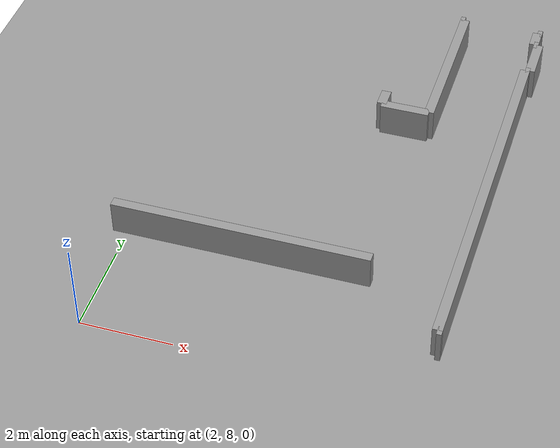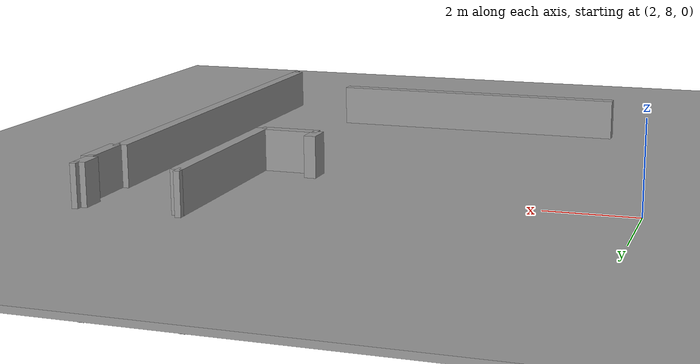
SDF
<sdf version="1.4">
 <model name="Levine">
  <link name="Floor_0">
   <collision name="Floor_0_Collision">
    <geometry><box><size>40 30 0.1</size></box></geometry>
    <pose>0 0 0.05 0 -0 0</pose>
   </collision>
   <visual name="Floor_0_Visual">
    <pose>0 0 0.05 0 -0 0</pose>
    <geometry><box><size>40 30 0.1</size></box></geometry>
    <material>
     <script><uri>file://media/materials/scripts/gazebo.material</uri><name>Gazebo/Grey</name></script>
    </material>
   </visual>
   <velocity_decay><linear>0</linear><angular>0</angular></velocity_decay>
   <pose>15 10 1.7 0 -0 0</pose>
  </link>
  <link name="Wall_27">
   <collision name="Wall_27_Collision">
    <geometry><box><size>0.1 0.2 2.5</size></box></geometry>
    <pose>0 0 1.25 0 0 0</pose>
   </collision>
   <visual name="Wall_27_Visual">
    <pose>0 0 1.25 0 0 0</pose>
    <geometry><box><size>0.1 0.2 2.5</size></box></geometry>
    <material>
     <script><uri>file://media/materials/scripts/gazebo.material</uri><name>Gazebo/Grey</name></script>
    </material>
   </visual>
   <velocity_decay><linear>0</linear><angular>0</angular></velocity_decay>
   <pose>9.35 7.7 0 0 0 3.14159265359</pose>
  </link>
  <link name="Wall_28">
   <collision name="Wall_28_Collision">
    <geometry><box><size>7.6 0.2 2.5</size></box></geometry>
    <pose>0 0 1.25 0 0 0</pose>
   </collision>
   <visual name="Wall_28_Visual">
    <pose>0 0 1.25 0 0 0</pose>
    <geometry><box><size>7.6 0.2 2.5</size></box></geometry>
    <material>
     <script><uri>file://media/materials/scripts/gazebo.material</uri><name>Gazebo/Grey</name></script>
    </material>
   </visual>
   <velocity_decay><linear>0</linear><angular>0</angular></velocity_decay>
   <pose>9.3 11.5 0 0 0 1.57079632679</pose>
  </link>
  <link name="Wall_29">
   <collision name="Wall_29_Collision">
    <geometry><box><size>0.1 0.2 2.5</size></box></geometry>
    <pose>0 0 1.25 0 0 0</pose>
   </collision>
   <visual name="Wall_29_Visual">
    <pose>0 0 1.25 0 0 0</pose>
    <geometry><box><size>0.1 0.2 2.5</size></box></geometry>
    <material>
     <script><uri>file://media/materials/scripts/gazebo.material</uri><name>Gazebo/Grey</name></script>
    </material>
   </visual>
   <velocity_decay><linear>0</linear><angular>0</angular></velocity_decay>
   <pose>9.35 15.3 0 0 0 0.0</pose>
  </link>
  <link name="Wall_30">
   <collision name="Wall_30_Collision">
    <geometry><box><size>0.9 0.2 2.5</size></box></geometry>
    <pose>0 0 1.25 0 0 0</pose>
   </collision>
   <visual name="Wall_30_Visual">
    <pose>0 0 1.25 0 0 0</pose>
    <geometry><box><size>0.9 0.2 2.5</size></box></geometry>
    <material>
     <script><uri>file://media/materials/scripts/gazebo.material</uri><name>Gazebo/Grey</name></script>
    </material>
   </visual>
   <velocity_decay><linear>0</linear><angular>0</angular></velocity_decay>
   <pose>9.4 15.75 0 0 0 1.57079632679</pose>
  </link>
  <link name="Wall_31">
   <collision name="Wall_31_Collision">
    <geometry><box><size>0.1 0.2 2.5</size></box></geometry>
    <pose>0 0 1.25 0 0 0</pose>
   </collision>
   <visual name="Wall_31_Visual">
    <pose>0 0 1.25 0 0 0</pose>
    <geometry><box><size>0.1 0.2 2.5</size></box></geometry>
    <material>
     <script><uri>file://media/materials/scripts/gazebo.material</uri><name>Gazebo/Grey</name></script>
    </material>
   </visual>
   <velocity_decay><linear>0</linear><angular>0</angular></velocity_decay>
   <pose>9.35 16.2 0 0 0 3.14159265359</pose>
  </link>
  <link name="Wall_32">
   <collision name="Wall_32_Collision">
    <geometry><box><size>0.4 0.2 2.5</size></box></geometry>
    <pose>0 0 1.25 0 0 0</pose>
   </collision>
   <visual name="Wall_32_Visual">
    <pose>0 0 1.25 0 0 0</pose>
    <geometry><box><size>0.4 0.2 2.5</size></box></geometry>
    <material>
     <script><uri>file://media/materials/scripts/gazebo.material</uri><name>Gazebo/Grey</name></script>
    </material>
   </visual>
   <velocity_decay><linear>0</linear><angular>0</angular></velocity_decay>
   <pose>9.3 16.4 0 0 0 1.57079632679</pose>
  </link>
  <link name="Wall_33">
   <collision name="Wall_33_Collision">
    <geometry><box><size>0.1 0.2 2.5</size></box></geometry>
    <pose>0 0 1.25 0 0 0</pose>
   </collision>
   <visual name="Wall_33_Visual">
    <pose>0 0 1.25 0 0 0</pose>
    <geometry><box><size>0.1 0.2 2.5</size></box></geometry>
    <material>
     <script><uri>file://media/materials/scripts/gazebo.material</uri><name>Gazebo/Grey</name></script>
    </material>
   </visual>
   <velocity_decay><linear>0</linear><angular>0</angular></velocity_decay>
   <pose>9.35 16.6 0 0 0 0.0</pose>
  </link>
  <link name="Wall_69">
   <collision name="Wall_69_Collision">
    <geometry><box><size>5.2 0.2 2.5</size></box></geometry>
    <pose>0 0 1.25 0 0 0</pose>
   </collision>
   <visual name="Wall_69_Visual">
    <pose>0 0 1.25 0 0 0</pose>
    <geometry><box><size>5.2 0.2 2.5</size></box></geometry>
    <material>
     <script><uri>file://media/materials/scripts/gazebo.material</uri><name>Gazebo/Grey</name></script>
    </material>
   </visual>
   <velocity_decay><linear>0</linear><angular>0</angular></velocity_decay>
   <pose>5.1 9.1 0 0 0 0.0</pose>
  </link>
  <link name="Wall_101">
   <collision name="Wall_101_Collision">
    <geometry><box><size>0.1 0.2 2.5</size></box></geometry>
    <pose>0 0 1.25 0 0 0</pose>
   </collision>
   <visual name="Wall_101_Visual">
    <pose>0 0 1.25 0 0 0</pose>
    <geometry><box><size>0.1 0.2 2.5</size></box></geometry>
    <material>
     <script><uri>file://media/materials/scripts/gazebo.material</uri><name>Gazebo/Grey</name></script>
    </material>
   </visual>
   <velocity_decay><linear>0</linear><angular>0</angular></velocity_decay>
   <pose>7.65 16.6 0 0 0 0.0</pose>
  </link>
  <link name="Wall_102">
   <collision name="Wall_102_Collision">
    <geometry><box><size>3.2 0.2 2.5</size></box></geometry>
    <pose>0 0 1.25 0 0 0</pose>
   </collision>
   <visual name="Wall_102_Visual">
    <pose>0 0 1.25 0 0 0</pose>
    <geometry><box><size>3.2 0.2 2.5</size></box></geometry>
    <material>
     <script><uri>file://media/materials/scripts/gazebo.material</uri><name>Gazebo/Grey</name></script>
    </material>
   </visual>
   <velocity_decay><linear>0</linear><angular>0</angular></velocity_decay>
   <pose>7.7 15.0 0 0 0 -1.57079632679</pose>
  </link>
  <link name="Wall_103">
   <collision name="Wall_103_Collision">
    <geometry><box><size>1.0 0.2 2.5</size></box></geometry>
    <pose>0 0 1.25 0 0 0</pose>
   </collision>
   <visual name="Wall_103_Visual">
    <pose>0 0 1.25 0 0 0</pose>
    <geometry><box><size>1.0 0.2 2.5</size></box></geometry>
    <material>
     <script><uri>file://media/materials/scripts/gazebo.material</uri><name>Gazebo/Grey</name></script>
    </material>
   </visual>
   <velocity_decay><linear>0</linear><angular>0</angular></velocity_decay>
   <pose>7.2 13.4 0 0 0 3.14159265359</pose>
  </link>
  <link name="Wall_104">
   <collision name="Wall_104_Collision">
    <geometry><box><size>0.4 0.2 2.5</size></box></geometry>
    <pose>0 0 1.25 0 0 0</pose>
   </collision>
   <visual name="Wall_104_Visual">
    <pose>0 0 1.25 0 0 0</pose>
    <geometry><box><size>0.4 0.2 2.5</size></box></geometry>
    <material>
     <script><uri>file://media/materials/scripts/gazebo.material</uri><name>Gazebo/Grey</name></script>
    </material>
   </visual>
   <velocity_decay><linear>0</linear><angular>0</angular></velocity_decay>
   <pose>6.7 13.6 0 0 0 1.57079632679</pose>
  </link>
  <static>1</static>
 </model>
</sdf>
